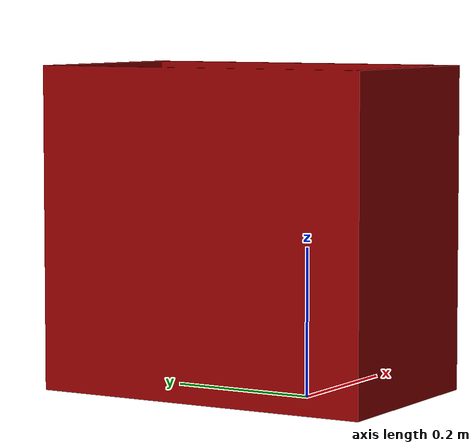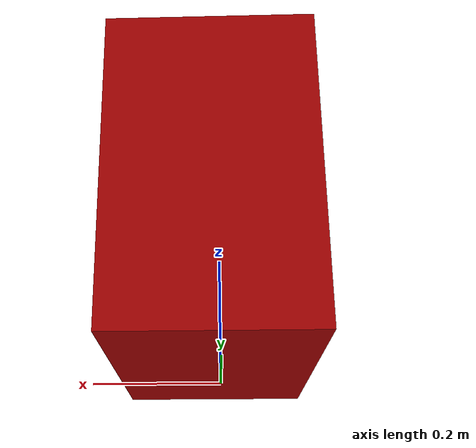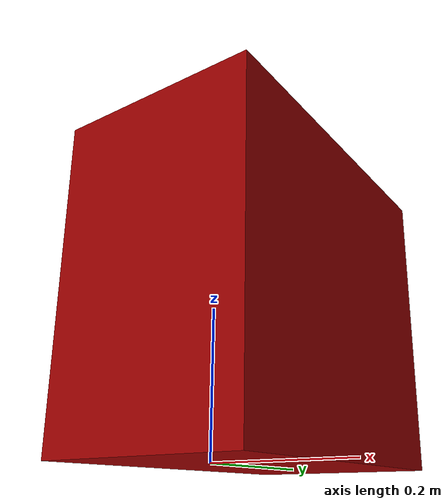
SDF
<?xml version="1.0"?>

<sdf version='1.7'>
  <model name='box_large'>
    <link name='box_base'>
      <gravity>1</gravity>
      <inertial>
        <mass>1.06</mass>
        <inertia>
            <ixx>0.01</ixx>
            <ixy>0</ixy>
            <ixz>0</ixz>
            <iyy>0.01</iyy>
            <iyz>0</iyz>
            <izz>0.01</izz>
        </inertia>
        <pose>0 0 0.1 0 0 0</pose>
      </inertial>
      <visual name="visual">
        <geometry>
          <mesh>
            <scale>0.01 0.01 0.01</scale>
            <uri>model://box_large/meshes/box_large.dae</uri>
          </mesh>
        </geometry>
        <material>
          <ambient>0.60 0.0 0.0 1</ambient>
          <diffuse>0.60 0.0 0.0 1</diffuse>
          <specular>0.8 0.8 0.8 1</specular>
        </material>
      </visual>
      <collision name="collider">
        <geometry>
          <mesh>
            <scale>0.01 0.01 0.01</scale>
            <uri>model://box_large/meshes/box_large.dae</uri>
          </mesh>
        </geometry>
      </collision>
    </link>
  </model>
</sdf>
